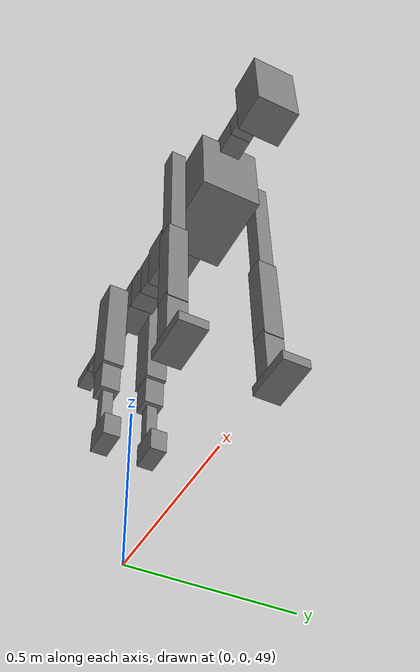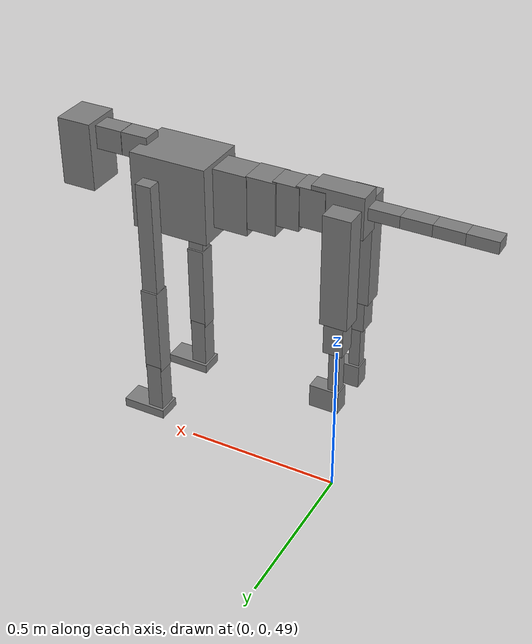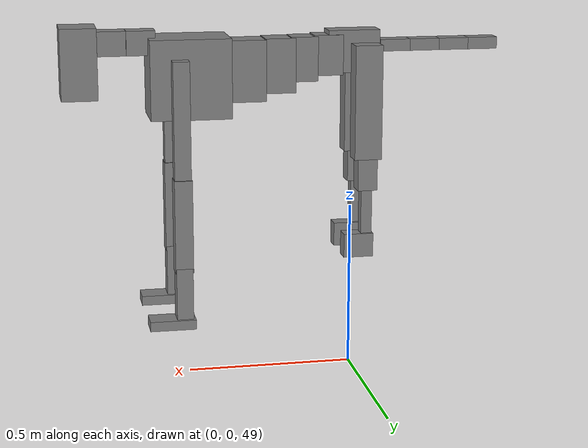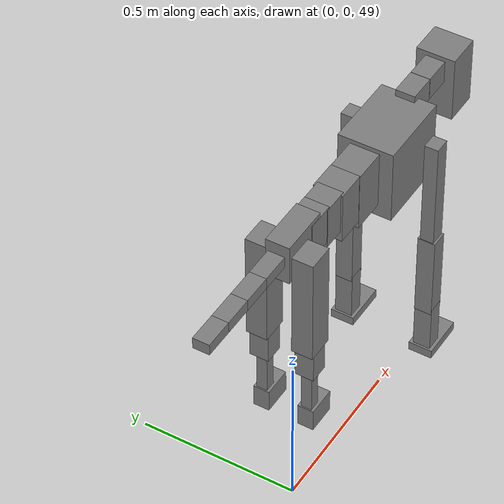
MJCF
<mujoco model="dog">

    <default>
        <joint armature="0.02" stiffness="1" damping="0.2" limited="true"/>
        <geom condim="3" friction="1 0.05 0.05" margin="0.01"/>
        <motor ctrllimited="true" ctrlrange="-1.0 1.0" forcelimited="true" gear="50"/>
    </default>

    <compiler inertiafromgeom="true" angle="radian"/>

    <option timestep="0.016" iterations="50" tolerance="1e-10" solver="Newton" jacobian="dense" cone="pyramidal"/>

    <size nconmax="20000" njmax="60000" nstack="5000000"/>
    <visual>
        <map force="0.1" zfar="30"/>
        <rgba haze="0.15 0.25 0.35 1"/>
        <quality shadowsize="2048"/>
        <global offwidth="800" offheight="800"/>
    </visual>

    <asset>
        <texture type="skybox" builtin="gradient" rgb1="0.3 0.5 0.7" rgb2="0 0 0" width="512" height="512"/>
        <texture name="texplane" type="2d" builtin="checker" rgb1=".2 .3 .4" rgb2=".1 0.15 0.2" width="512" height="512"
                 mark="cross" markrgb=".8 .8 .8"/>
        <texture name="texgeom" type="cube" builtin="flat" mark="cross" width="127" height="1278" rgb1="0.8 0.6 0.4"
                 rgb2="0.8 0.6 0.4" markrgb="1 1 1" random="0.01"/>

        <material name="matplane" reflectance="0.3" texture="texplane" texrepeat="1 1" texuniform="true"/>
        <material name="matgeom" texture="texgeom" texuniform="true" rgba="0.8 0.6 .4 1"/>
    </asset>

    <worldbody>
        <geom name="floor" pos="0 0 0" size="0 0 .25" type="plane" material="matplane" condim="3"/>

        <light directional="false" diffuse=".2 .2 .2" specular="0 0 0" pos="0 0 5" dir="0 0 -1" castshadow="false"/>
        <light mode="targetbodycom" target="torso" directional="false" diffuse=".8 .8 .8" specular="0.3 0.3 0.3"
               pos="0 0 4.0" dir="0 0 -1"/>

        <body name="root" pos="0 0 50">
            <freejoint name="root_1"/>
            <geom type="box" pos="0 0 -0.02" size="0.0774  0.0358  0.063" density="2030"/>

            <body name="spine1" pos="0.054 0 0">
                <joint name="spine1_y" axis="0 1 0" range="0 0.7" limited="true"/>
                <geom type="box" pos="0.02375 0 -0.03" size="0.04375  0.0375  0.05985" density="2030"/>

                <body name="spine2" pos="0.0612 0 0">
                    <joint name="spine2_y" axis="0 1 0" range="-0.15 0.15" limited="true"/>
                    <geom type="box" pos="0.03555  0  -0.04" size="0.04055  0.039  0.06615" density="2030"/>

                    <body name="spine3" pos="0.0730 0 0">
                        <joint name="spine3_y" axis="0 1 0" range="-0.15 0.15" limited="true"/>
                        <geom type="box" pos="0.03555  0  -0.057" size="0.04555  0.0445  0.081" density="2030"/>

                        <body name="spine4" pos="0.0780 0 0">
                            <joint name="spine4_y" axis="0 1 0" range="-0.15 0.15" limited="true"/>
                            <geom type="box" pos="0.05265  0  -0.07" size="0.05265  0.045  0.09135" density="2030"/>

                            <body name="torso" pos="0.1082 0 0">
                                <joint name="torso_y" axis="0 1 0" range="-0.15 0.15" limited="true"/>
                                <geom type="box" pos="0.11925  0  -0.085" size="0.11925  0.085  0.11745"
                                      density="2030"/>

                                <body name="neck1" pos="0.2160  0   0.0180">
                                    <joint name="neck1_y" axis="0 1 0" range="-1.2  -1" limited="true"/>
                                    <geom type="box" pos="0.0423  0  0" size="0.0423  0.03  0.036" density="2325"/>

                                    <body name="neck2" pos="0.0853  0  0">
                                        <joint name="neck2_y" axis="0 1 0" range="0.1  0" limited="true"/>
                                        <geom type="box" pos="0.0423  0  0" size="0.0423  0.03  0.036" density="2325"/>

                                        <body name="head" pos="0.0853  0  0">
                                            <joint name="head_y" axis="0 1 0" range="-0.3  -0.2" limited="true"/>
                                            <geom type="box" pos="0.0531  0  -0.055" size="0.0531  0.06  0.1044"
                                                  density="4030"/>

                                        </body>
                                    </body>
                                </body>

                                <body name="front_shoulder" pos="0.156  0   -0.0480">
                                    <joint name="front_shoulder_y" axis="0 1 0" range="-1 1.5" limited="true"/>
                                    <geom type="box" pos="0 0.13 -0.1592" size="0.0244  0.0209  0.1858" density="1158"/>
                                    <geom type="box" pos="0 -0.13 -0.1592" size="0.0244  0.0209  0.1858"
                                          density="1158"/>

                                    <body name="front_elbow" pos="0  0  -0.3183">
                                        <joint name="front_elbow_y" axis="0 1 0" range="-2 0" limited="true"/>
                                        <geom type="box" pos="0 0.13 -0.1385" size="0.0265  0.0271  0.1385"
                                              density="1081"/>
                                        <geom type="box" pos="0 -0.13 -0.1385" size="0.0265  0.0271  0.1385"
                                              density="1081"/>

                                        <body name="front_wrist" pos="0  0  -0.2770">
                                            <joint name="front_wrist_y" axis="0 1 0" range="-0.2 0" limited="true"/>
                                            <geom type="box" pos="0 0.13 -0.0780" size="0.0245  0.0272  0.0911"
                                                  density="1664"/>
                                            <geom type="box" pos="0 -0.13 -0.0780" size="0.0245  0.0272  0.0911"
                                                  density="1664"/>

                                            <body name="front_finger_end" pos="0  0  -0.1560">
                                                <joint name="front_finger_y" axis="0 1 0" range="-0.4 1"
                                                       limited="true"/>
                                                <geom type="box" pos="0.0371  0.13  0.0006"
                                                      size="0.0680  0.0371  0.0144" density="1515"/>
                                                <geom type="box" pos="0.0371  -0.13  0.0006"
                                                      size="0.0680  0.0371  0.0144" density="1515"/>

                                            </body>

                                        </body>
                                    </body>
                                </body>

                            </body>
                        </body>
                    </body>
                </body>
            </body>

            <body name="back_hip" pos="-0.03 0 -0.018">
                <joint name="back_hip_y" axis="0 1 0" range="-1.5 0.3" limited="true"/>
                <geom type="box" pos="0 0.07 -0.1478" size="0.0409  0.0321  0.1706" density="1154"/>
                <geom type="box" pos="0 -0.07 -0.1478" size="0.0409  0.0321  0.1706" density="1154"/>

                <body name="back_knee" pos="0  0  -0.2955">
                    <joint name="back_knee_y" axis="0 1 0" range="0 2.8" limited="true"/>
                    <geom type="box" pos="0 0.07 -0.0511" size="0.0295  0.0291  0.0666" density="1227"/>
                    <geom type="box" pos="0 -0.07 -0.0511" size="0.0295  0.0291  0.0666" density="1227"/>

                    <body name="back_ankle" pos="0  0  -0.1021">
                        <joint name="back_ankle_y" axis="0 1 0" range="-2.2 0" limited="true"/>
                        <geom type="box" pos="0 0.07 -0.0822" size="0.0165  0.0165  0.0934" density="1284"/>
                        <geom type="box" pos="0 -0.07 -0.0822" size="0.0165  0.0165  0.0934" density="1284"/>

                        <body name="back_toe_end" pos="0  0  -0.1643">
                            <joint name="back_toe_y" axis="0 1 0" range="-0.4 1" limited="true"/>
                            <geom type="box" pos="0.0245  0.07  -0.0209" size="0.0449  0.0245  0.0359" density="1515"/>
                            <geom type="box" pos="0.0245  -0.07  -0.0209" size="0.0449  0.0245  0.0359" density="1515"/>

                        </body>
                    </body>
                </body>
            </body>

            <body name="tail1" pos="-0.074 0 -0.006">
                <joint name="tail1_y" axis="0 1 0" range="-0.2 0.2" limited="true"/>
                <geom type="box" pos="-0.0536  0  0" size="0.045  0.025  0.0175" density="1587"/>

                <body name="tail2" pos="-0.09 0 0">
                    <joint name="tail2_y" axis="0 1 0" range="-0.2 0.2" limited="true"/>
                    <geom type="box" pos="-0.0536  0  0" size="0.045  0.025  0.0175" density="1587"/>

                    <body name="tail3" pos="-0.09 0 0">
                        <joint name="tail3_y" axis="0 1 0" range="-0.2 0.2" limited="true"/>
                        <geom type="box" pos="-0.0536  0  0" size="0.045  0.025  0.0175" density="1587"/>

                        <body name="tail4" pos="-0.09 0 0">
                            <joint name="tail4_y" axis="0 1 0" range="-0.2 0.2" limited="true"/>
                            <geom type="box" pos="-0.0536  0  0" size="0.045  0.025  0.0175" density="1587"/>

                        </body>
                    </body>
                </body>
            </body>
        </body>
    </worldbody>

    <actuator>
        <motor joint="spine1_y" forcerange="-150 150     "/>
        <motor joint="spine2_y" forcerange="-150 150     "/>
        <motor joint="spine3_y" forcerange="-150 150     "/>
        <motor joint="spine4_y" forcerange="-150 150     "/>
        <motor joint="torso_y" forcerange="-150 150     "/>
        <motor joint="neck1_y" forcerange="-100 100       "/>
        <motor joint="neck2_y" forcerange="-100 100       "/>
        <motor joint="head_y" forcerange="-150 150       "/>
        <motor joint="front_shoulder_y" forcerange="-120.22 119.06"/>
        <motor joint="front_elbow_y" forcerange="-112.50 184.81"/>
        <motor joint="front_wrist_y" forcerange="-111.66 105.75"/>
        <motor joint="front_finger_y" forcerange="-71.49 86.41"/>
        <motor joint="back_hip_y" forcerange="-358.81 268.67"/>
        <motor joint="back_knee_y" forcerange="-357.23 265.55"/>
        <motor joint="back_angle_y" forcerange="-87.00 76.50"/>
        <motor joint="back_toe_y" forcerange="-92.15 23.90"/>
        <motor joint="tail1_y" forcerange="-50 50     "/>
        <motor joint="tail2_y" forcerange="-50 50     "/>
        <motor joint="tail3_y" forcerange="-50 50     "/>
        <motor joint="tail4_y" forcerange="-50 50     "/>
    </actuator>
</mujoco>
